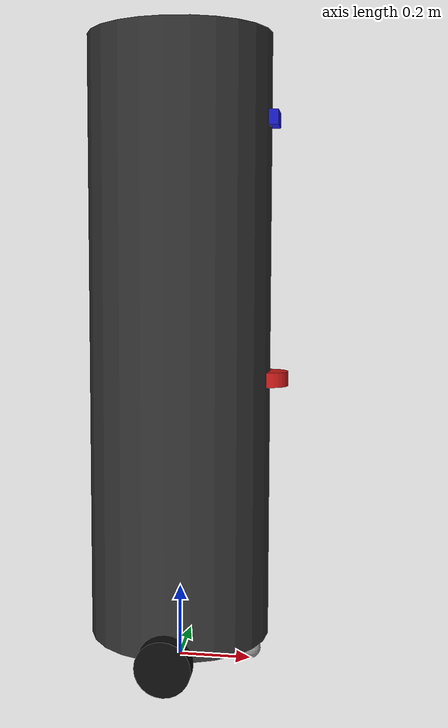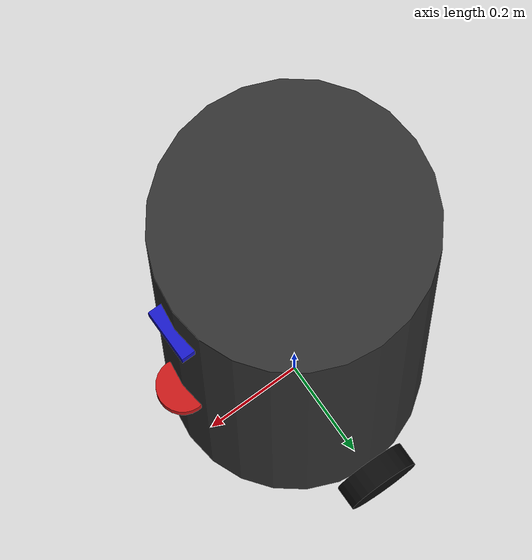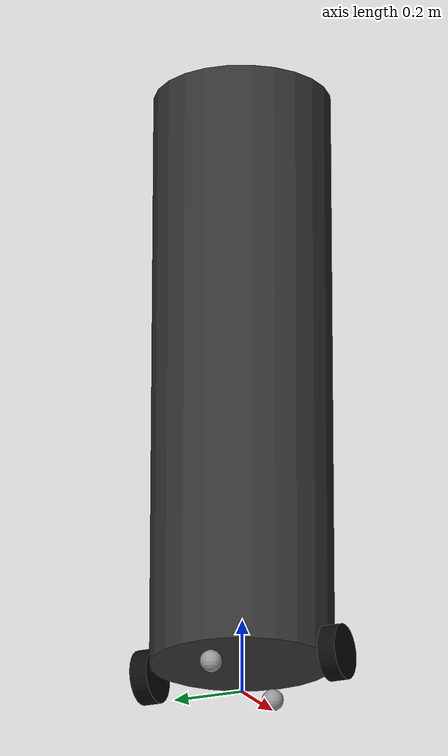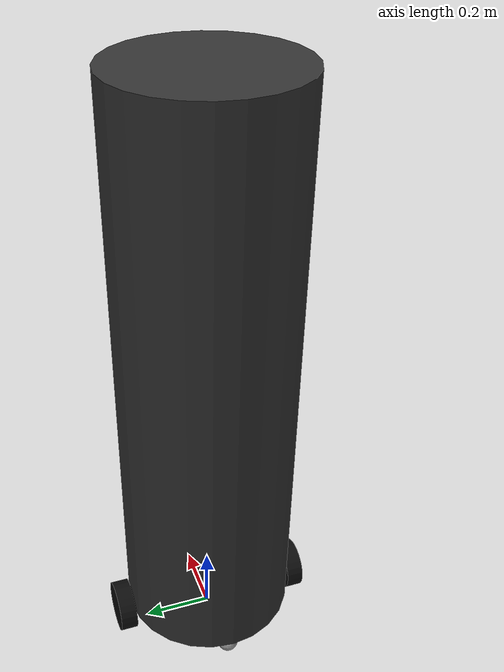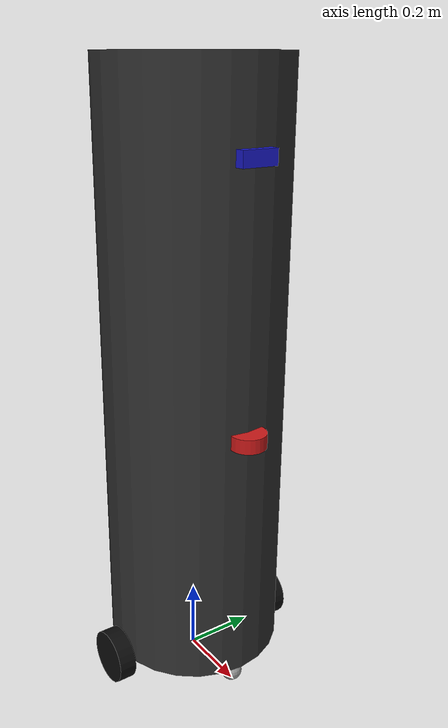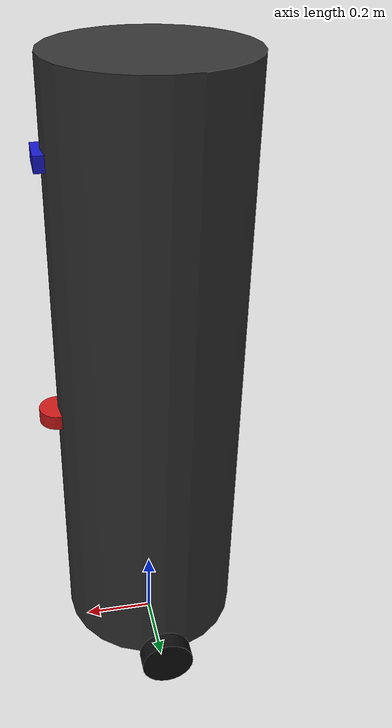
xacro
<?xml version="1.0"?>
<robot name="photo_nav_robot" xmlns:xacro="http://www.ros.org/wiki/xacro">

  <!-- ==================== PROPERTIES ==================== -->
  <!-- Chassis: cylinder, diameter 0.50m (radius 0.25m), height 1.65m -->
  <xacro:property name="chassis_radius"  value="0.25"/>
  <xacro:property name="chassis_height"  value="1.65"/>
  <xacro:property name="chassis_mass"    value="20.0"/>

  <!-- Drive wheels: radius 0.075m, width 0.05m -->
  <xacro:property name="wheel_radius"    value="0.075"/>
  <xacro:property name="wheel_width"     value="0.05"/>
  <xacro:property name="wheel_mass"      value="1.0"/>
  <!-- Wheels sit at the bottom of the chassis, z = wheel_radius from ground -->
  <!-- Chassis center z = wheel_radius + chassis_height/2 -->
  <xacro:property name="chassis_z"       value="${wheel_radius + chassis_height / 2.0}"/>

  <!-- Caster wheels: small sphere -->
  <xacro:property name="caster_radius"   value="0.03"/>
  <xacro:property name="caster_mass"     value="0.2"/>

  <!-- Sensor heights above ground -->
  <!-- Lidar at ~1.0m above ground -->
  <xacro:property name="lidar_z_from_ground"  value="0.8"/>
  <!-- Camera at ~1.8m above ground (lidar + 0.8m) -->
  <xacro:property name="camera_z_from_ground" value="1.5"/>

  <!-- ==================== MATERIALS ==================== -->
  <material name="dark_gray">
    <color rgba="0.2 0.2 0.2 1.0"/>
  </material>
  <material name="light_gray">
    <color rgba="0.6 0.6 0.6 1.0"/>
  </material>
  <material name="black">
    <color rgba="0.05 0.05 0.05 1.0"/>
  </material>
  <material name="red">
    <color rgba="0.8 0.1 0.1 1.0"/>
  </material>
  <material name="blue">
    <color rgba="0.1 0.1 0.8 1.0"/>
  </material>

  <!-- ==================== INERTIA MACROS ==================== -->
  <xacro:macro name="inertial_cylinder" params="mass radius length">
    <inertial>
      <mass value="${mass}"/>
      <inertia
        ixx="${(1.0/12.0) * mass * (3 * radius*radius + length*length)}"
        ixy="0.0" ixz="0.0"
        iyy="${(1.0/12.0) * mass * (3 * radius*radius + length*length)}"
        iyz="0.0"
        izz="${0.5 * mass * radius * radius}"/>
    </inertial>
  </xacro:macro>

  <xacro:macro name="inertial_sphere" params="mass radius">
    <inertial>
      <mass value="${mass}"/>
      <inertia
        ixx="${(2.0/5.0) * mass * radius * radius}"
        ixy="0.0" ixz="0.0"
        iyy="${(2.0/5.0) * mass * radius * radius}"
        iyz="0.0"
        izz="${(2.0/5.0) * mass * radius * radius}"/>
    </inertial>
  </xacro:macro>

  <!-- ==================== BASE FOOTPRINT ==================== -->
  <link name="base_footprint"/>

  <!-- ==================== CHASSIS ==================== -->
  <link name="base_link">
    <xacro:inertial_cylinder mass="${chassis_mass}" radius="${chassis_radius}" length="${chassis_height}"/>
    <visual>
      <origin xyz="0 0 0" rpy="0 0 0"/>
      <geometry>
        <cylinder radius="${chassis_radius}" length="${chassis_height}"/>
      </geometry>
      <material name="dark_gray"/>
    </visual>
    <collision>
      <origin xyz="0 0 0" rpy="0 0 0"/>
      <geometry>
        <cylinder radius="${chassis_radius}" length="${chassis_height}"/>
      </geometry>
    </collision>
  </link>

  <joint name="base_footprint_to_base_link" type="fixed">
    <parent link="base_footprint"/>
    <child  link="base_link"/>
    <!-- chassis center is wheel_radius + chassis_height/2 above ground -->
    <origin xyz="0 0 ${chassis_z}" rpy="0 0 0"/>
  </joint>

  <!-- ==================== DRIVE WHEELS (differential) ==================== -->
  <!--
    Wheels are placed at the equator of the chassis (z = 0 relative to base_link),
    symmetric on left/right, just outside the chassis radius.
    Wheel axis is along Y. Joint axis is (0 1 0).
  -->
  <xacro:macro name="drive_wheel" params="name y_reflect">
    <link name="${name}_wheel_link">
      <xacro:inertial_cylinder mass="${wheel_mass}" radius="${wheel_radius}" length="${wheel_width}"/>
      <visual>
        <!-- cylinder along Z by default; rotate 90° around X so it rolls along X -->
        <origin xyz="0 0 0" rpy="${pi/2} 0 0"/>
        <geometry>
          <cylinder radius="${wheel_radius}" length="${wheel_width}"/>
        </geometry>
        <material name="black"/>
      </visual>
      <collision>
        <origin xyz="0 0 0" rpy="${pi/2} 0 0"/>
        <geometry>
          <cylinder radius="${wheel_radius}" length="${wheel_width}"/>
        </geometry>
      </collision>
    </link>

    <joint name="${name}_wheel_joint" type="continuous">
      <parent link="base_link"/>
      <child  link="${name}_wheel_link"/>
      <!-- Side of chassis; at same height as chassis center minus chassis_z offset = ground level -->
      <origin xyz="0 ${y_reflect * (chassis_radius + wheel_width / 2.0)} ${-chassis_z + wheel_radius}" rpy="0 0 0"/>
      <axis xyz="0 1 0"/>
      <dynamics damping="0.01" friction="0.1"/>
    </joint>
  </xacro:macro>

  <xacro:drive_wheel name="left"  y_reflect="1"/>
  <xacro:drive_wheel name="right" y_reflect="-1"/>

  <!-- ==================== CASTER WHEELS (omnidirectional) ==================== -->
  <xacro:macro name="caster_wheel" params="name x_pos">
    <link name="${name}_caster_link">
      <xacro:inertial_sphere mass="${caster_mass}" radius="${caster_radius}"/>
      <visual>
        <origin xyz="0 0 0" rpy="0 0 0"/>
        <geometry>
          <sphere radius="${caster_radius}"/>
        </geometry>
        <material name="light_gray"/>
      </visual>
      <collision>
        <origin xyz="0 0 0" rpy="0 0 0"/>
        <geometry>
          <sphere radius="${caster_radius}"/>
        </geometry>
        <!-- Near-zero friction so it acts as a free-rolling caster -->
        <surface>
          <friction>
            <ode>
              <mu>0.0</mu>
              <mu2>0.0</mu2>
            </ode>
          </friction>
        </surface>
      </collision>
    </link>

    <joint name="${name}_caster_joint" type="fixed">
      <parent link="base_link"/>
      <child  link="${name}_caster_link"/>
      <origin xyz="${x_pos} 0 ${-chassis_z + caster_radius}" rpy="0 0 0"/>
    </joint>
  </xacro:macro>

  <xacro:caster_wheel name="front" x_pos="${chassis_radius * 0.8}"/>
  <xacro:caster_wheel name="rear"  x_pos="${-chassis_radius * 0.8}"/>

  <!-- ==================== LIDAR (TF only, no plugin) ==================== -->
  <!--
    Single-line 2D lidar at ~1.0m above ground, mounted on the front face of the chassis.
    z offset from base_link: lidar_z_from_ground - chassis_z
  -->
  <link name="laser">
    <visual>
      <origin xyz="0 0 0" rpy="0 0 0"/>
      <geometry>
        <cylinder radius="0.05" length="0.04"/>
      </geometry>
      <material name="red"/>
    </visual>
    <collision>
      <origin xyz="0 0 0" rpy="0 0 0"/>
      <geometry>
        <cylinder radius="0.05" length="0.04"/>
      </geometry>
    </collision>
    <inertial>
      <mass value="0.1"/>
      <inertia ixx="0.0001" ixy="0" ixz="0" iyy="0.0001" iyz="0" izz="0.0001"/>
    </inertial>
  </link>

  <joint name="lidar_joint" type="fixed">
    <parent link="base_link"/>
    <child  link="laser"/>
    <origin xyz="${chassis_radius} 0 ${lidar_z_from_ground - chassis_z}" rpy="0 0 0"/>
  </joint>

  <!-- ==================== CAMERA (TF only, no plugin) ==================== -->
  <!--
    Camera ~0.8m above the lidar (~1.8m above ground), also on the front face.
    z offset from base_link: camera_z_from_ground - chassis_z
  -->
  <link name="camera_link">
    <visual>
      <origin xyz="0 0 0" rpy="0 0 0"/>
      <geometry>
        <box size="0.04 0.10 0.04"/>
      </geometry>
      <material name="blue"/>
    </visual>
    <collision>
      <origin xyz="0 0 0" rpy="0 0 0"/>
      <geometry>
        <box size="0.04 0.10 0.04"/>
      </geometry>
    </collision>
    <inertial>
      <mass value="0.05"/>
      <inertia ixx="0.0001" ixy="0" ixz="0" iyy="0.0001" iyz="0" izz="0.0001"/>
    </inertial>
  </link>

  <joint name="camera_joint" type="fixed">
    <parent link="base_link"/>
    <child  link="camera_link"/>
    <!-- On the front face of chassis, 1.8m above ground -->
    <origin xyz="${chassis_radius} 0 ${camera_z_from_ground - chassis_z}" rpy="0 0 0"/>
  </joint>

  <!-- Optical frame for the camera (ROS convention: Z forward, X right, Y down) -->
  <link name="camera_optical_frame"/>
  <joint name="camera_optical_joint" type="fixed">
    <parent link="camera_link"/>
    <child  link="camera_optical_frame"/>
    <origin xyz="0 0 0" rpy="${-pi/2} 0 ${-pi/2}"/>
  </joint>

  <!-- ==================== LIDAR SENSOR PLUGIN ==================== -->
  <gazebo reference="laser">
    <sensor name="lidar" type="gpu_lidar">
      <topic>scan</topic>
      <ignition_frame_id>laser</ignition_frame_id>
      <update_rate>10</update_rate>
      <always_on>true</always_on>
      <visualize>true</visualize>
      <lidar>
        <scan>
          <horizontal>
            <samples>360</samples>
            <resolution>1</resolution>
            <min_angle>-3.14159265</min_angle>
            <max_angle>3.14159265</max_angle>
          </horizontal>
          <!-- single-line: only 1 vertical channel -->
          <vertical>
            <samples>1</samples>
            <resolution>1</resolution>
            <min_angle>0</min_angle>
            <max_angle>0</max_angle>
          </vertical>
        </scan>
        <range>
          <min>0.12</min>
          <max>12.0</max>
          <resolution>0.01</resolution>
        </range>
        <noise>
          <type>gaussian</type>
          <mean>0.0</mean>
          <stddev>0.01</stddev>
        </noise>
      </lidar>
    </sensor>
  </gazebo>

  <!-- ==================== IGNITION GAZEBO PLUGINS ==================== -->
  <gazebo>
    <!-- Differential drive controller -->
    <plugin filename="libignition-gazebo-diff-drive-system.so"
            name="ignition::gazebo::systems::DiffDrive">
      <left_joint>left_wheel_joint</left_joint>
      <right_joint>right_wheel_joint</right_joint>
      <wheel_separation>${2.0 * (chassis_radius + wheel_width / 2.0)}</wheel_separation>
      <wheel_radius>${wheel_radius}</wheel_radius>
      <odom_publish_frequency>50</odom_publish_frequency>
      <topic>cmd_vel</topic>
      <odom_topic>odom</odom_topic>
      <tf_topic>tf</tf_topic>
      <frame_id>odom</frame_id>
      <child_frame_id>base_footprint</child_frame_id>
      <max_linear_acceleration>1.0</max_linear_acceleration>
    </plugin>

    <!-- Joint state publisher (publishes wheel joint states to /joint_states) -->
    <plugin filename="libignition-gazebo-joint-state-publisher-system.so"
            name="ignition::gazebo::systems::JointStatePublisher">
      <topic>joint_states</topic>
    </plugin>
  </gazebo>

  <!-- ==================== IMU SENSOR ==================== -->
  <link name="imu_link">
    <inertial>
      <mass value="0.01"/>
      <inertia ixx="0.00001" ixy="0" ixz="0" iyy="0.00001" iyz="0" izz="0.00001"/>
    </inertial>
  </link>

  <joint name="imu_joint" type="fixed">
    <parent link="base_link"/>
    <child  link="imu_link"/>
    <origin xyz="0 0 0" rpy="0 0 0"/>
  </joint>

  <gazebo reference="imu_link">
    <sensor name="imu" type="imu">
      <topic>imu</topic>
      <ignition_frame_id>imu_link</ignition_frame_id>
      <update_rate>100</update_rate>
      <always_on>true</always_on>
      <imu>
        <angular_velocity>
          <x><noise type="gaussian"><mean>0</mean><stddev>0.009</stddev></noise></x>
          <y><noise type="gaussian"><mean>0</mean><stddev>0.009</stddev></noise></y>
          <z><noise type="gaussian"><mean>0</mean><stddev>0.009</stddev></noise></z>
        </angular_velocity>
        <linear_acceleration>
          <x><noise type="gaussian"><mean>0</mean><stddev>0.021</stddev></noise></x>
          <y><noise type="gaussian"><mean>0</mean><stddev>0.021</stddev></noise></y>
          <z><noise type="gaussian"><mean>0</mean><stddev>0.021</stddev></noise></z>
        </linear_acceleration>
      </imu>
      <plugin filename="libignition-gazebo-imu-system.so"
              name="ignition::gazebo::systems::Imu"/>
    </sensor>
  </gazebo>

  <!-- Caster friction override in Gazebo -->
  <gazebo reference="front_caster_link">
    <mu1>0.0</mu1>
    <mu2>0.0</mu2>
    <kp>1000000.0</kp>
    <kd>1.0</kd>
  </gazebo>
  <gazebo reference="rear_caster_link">
    <mu1>0.0</mu1>
    <mu2>0.0</mu2>
    <kp>1000000.0</kp>
    <kd>1.0</kd>
  </gazebo>

</robot>
